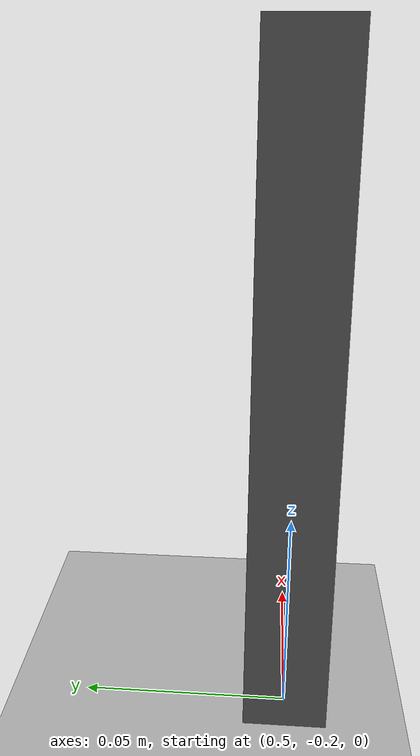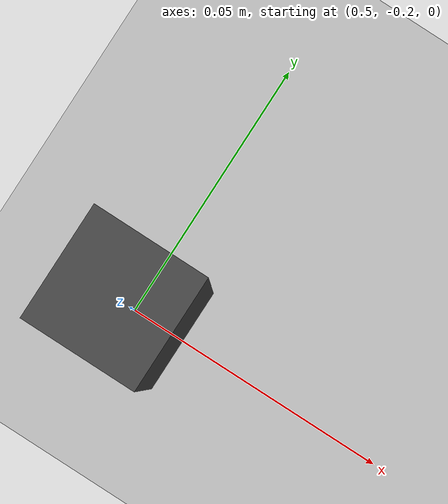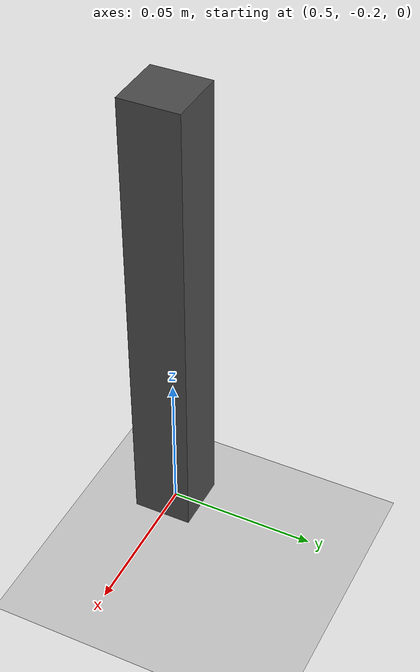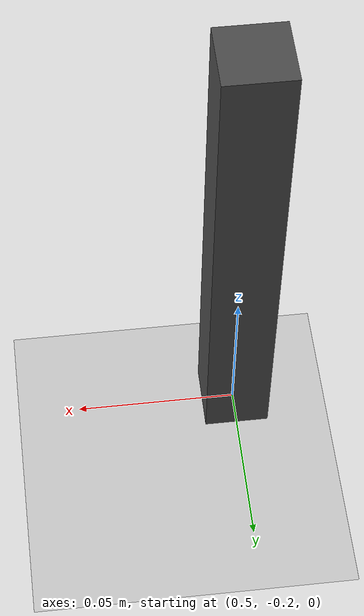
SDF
<sdf version="1.7">
 <world name="panda_pick_and_place">
  <light name="sun" type="directional">
   <pose>0 0 10 0 -0 0</pose>
   <diffuse>0.8 0.8 0.8 1</diffuse>
   <specular>0.2 0.2 0.2 1</specular>
   <attenuation>
    <range>1000</range>
    <constant>0.9</constant>
    <linear>0.01</linear>
    <quadratic>0.001</quadratic>
   </attenuation>
   <direction>-0.5 0.1 -0.9</direction>
   <spot><inner_angle>0</inner_angle><outer_angle>0</outer_angle><falloff>0</falloff></spot>
  </light>
  <model name="ground_plane">
   <static>1</static>
   <link name="link">
    <collision name="collision">
     <geometry><plane><normal>0 0 1</normal><size>100 100</size></plane></geometry>
     <surface>
      <contact><collide_bitmask>65535</collide_bitmask></contact>
      <friction><ode><mu>100</mu><mu2>50</mu2></ode></friction>
     </surface>
    </collision>
    <visual name="visual">
     <cast_shadows>0</cast_shadows>
     <geometry><plane><normal>0 0 1</normal><size>100 100</size></plane></geometry>
     <material>
      <script><uri>file://media/materials/scripts/gazebo.material</uri><name>Gazebo/Grey</name></script>
     </material>
    </visual>
   </link>
  </model>
  <model name="cube">
   <link name="link">
    <inertial>
     <pose>0.01 0.01 0.1 0 -0 0</pose>
     <mass>0.20736</mass>
     <inertia>
      <ixx>0.00012442</ixx>
      <ixy>0</ixy>
      <ixz>0</ixz>
      <iyy>0.00012442</iyy>
      <iyz>0</iyz>
      <izz>0.00012442</izz>
     </inertia>
    </inertial>
    <visual name="visual">
     <pose>0.0 0.0 0.08 0 -0 0</pose>
     <geometry><box><size>0.02 0.02 0.16</size></box></geometry>
     <material>
      <script><uri>file://media/materials/scripts/gazebo.material</uri><name>Gazebo/DarkGrey</name></script>
      <shader type="pixel"/>
     </material>
    </visual>
    <collision name="collision">
     <pose>0.01 0.01 0.08 0 -0 0</pose>
     <geometry><box><size>0.02 0.02 0.16</size></box></geometry>
     <surface>
      <friction><ode><mu>0.6</mu><mu2>0.6</mu2></ode></friction>
      <contact>
       <collide_bitmask>1</collide_bitmask>
       <ode><kp>1e+06</kp><kd>1e+06</kd><max_vel>1</max_vel><min_depth>0.002</min_depth></ode>
       <bullet>
        <kp>1e+06</kp>
        <kd>1e+06</kd>
        <split_impulse>1</split_impulse>
        <split_impulse_penetration_threshold>-0.01</split_impulse_penetration_threshold>
       </bullet>
      </contact>
     </surface>
    </collision>
   </link>
   <pose>0.500001 -0.200001 -0 -6e-06 8e-06 -0.0009</pose>
  </model>
  <gravity>0 0 -9.8</gravity>
  <magnetic_field>6e-06 2.3e-05 -4.2e-05</magnetic_field>
  <atmosphere type="adiabatic"/>
  <physics type="ode">
   <max_step_size>0.001</max_step_size>
   <real_time_factor>1</real_time_factor>
   <real_time_update_rate>1000</real_time_update_rate>
  </physics>
  <scene><ambient>0.4 0.4 0.4 1</ambient><background>0.7 0.7 0.7 1</background><shadows>1</shadows></scene>
  <spherical_coordinates>
   <surface_model>EARTH_WGS84</surface_model>
   <latitude_deg>0</latitude_deg>
   <longitude_deg>0</longitude_deg>
   <elevation>0</elevation>
   <heading_deg>0</heading_deg>
  </spherical_coordinates>
 </world>
</sdf>
